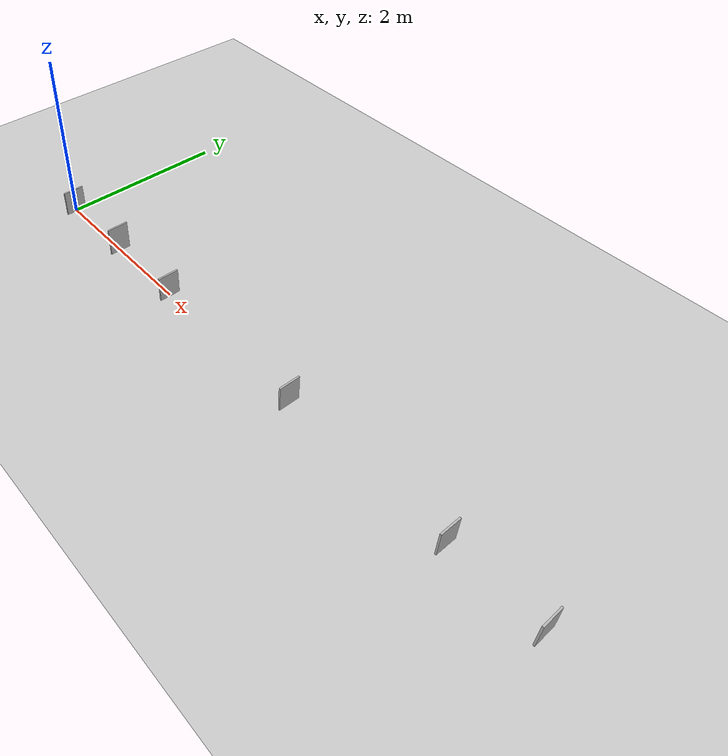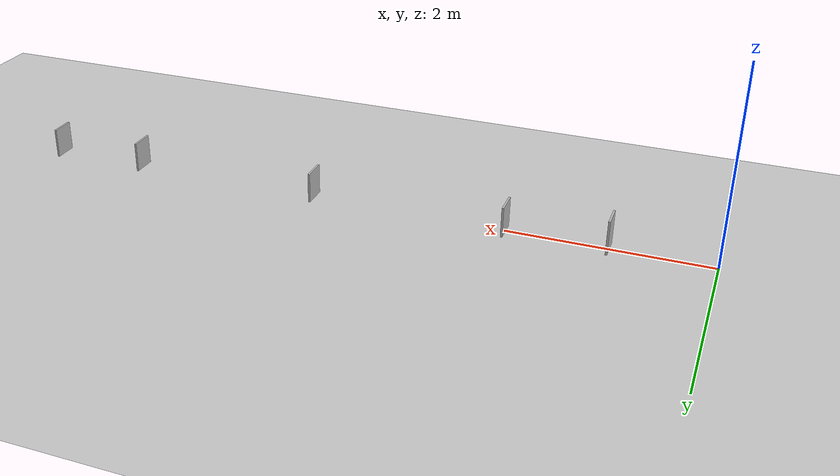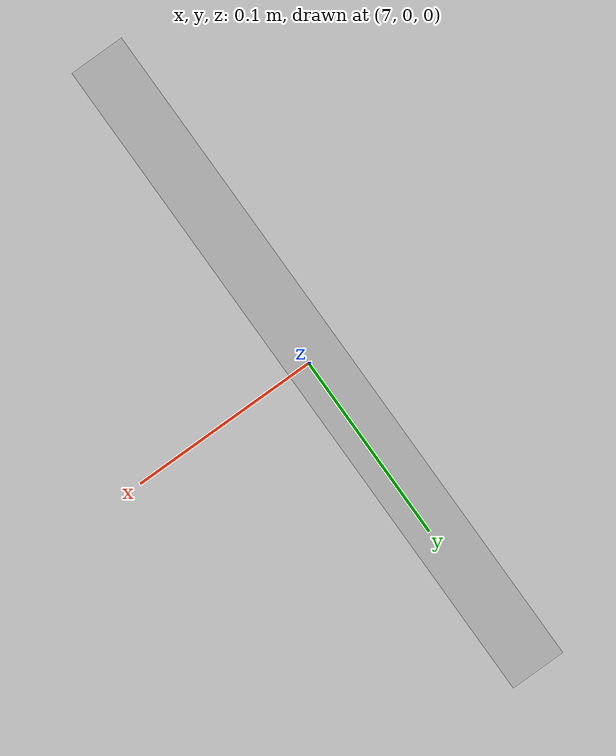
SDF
<sdf version="1.7">
 <world name="default">
  <light name="sun" type="directional">
   <pose>0 0 10 0 -0 0</pose>
   <diffuse>0.8 0.8 0.8 1</diffuse>
   <specular>0.2 0.2 0.2 1</specular>
   <attenuation>
    <range>1000</range>
    <constant>0.9</constant>
    <linear>0.01</linear>
    <quadratic>0.001</quadratic>
   </attenuation>
   <direction>-0.5 0.1 -0.9</direction>
   <spot><inner_angle>0</inner_angle><outer_angle>0</outer_angle><falloff>0</falloff></spot>
  </light>
  <model name="ground_plane">
   <static>1</static>
   <link name="link">
    <collision name="collision">
     <geometry><plane><normal>0 0 1</normal><size>100 100</size></plane></geometry>
     <surface>
      <contact><collide_bitmask>65535</collide_bitmask></contact>
      <friction><ode><mu>100</mu><mu2>50</mu2></ode></friction>
     </surface>
    </collision>
    <visual name="visual">
     <cast_shadows>0</cast_shadows>
     <geometry><plane><normal>0 0 1</normal><size>100 100</size></plane></geometry>
     <material>
      <script><uri>file://media/materials/scripts/gazebo.material</uri><name>Gazebo/Grey</name></script>
     </material>
    </visual>
   </link>
  </model>
  <gravity>0 0 -9.8</gravity>
  <magnetic_field>6e-06 2.3e-05 -4.2e-05</magnetic_field>
  <atmosphere type="adiabatic"/>
  <physics type="ode">
   <max_step_size>0.001</max_step_size>
   <real_time_factor>1</real_time_factor>
   <real_time_update_rate>1000</real_time_update_rate>
  </physics>
  <scene><ambient>0.4 0.4 0.4 1</ambient><background>0.7 0.7 0.7 1</background><shadows>1</shadows></scene>
  <spherical_coordinates>
   <surface_model>EARTH_WGS84</surface_model>
   <latitude_deg>0</latitude_deg>
   <longitude_deg>0</longitude_deg>
   <elevation>0</elevation>
   <heading_deg>0</heading_deg>
  </spherical_coordinates>
  <model name="green">
   <static>1</static>
   <link name="link">
    <visual name="visual">
     <geometry><mesh><uri>model://green/meshes/acircles_pattern.dae</uri></mesh></geometry>
    </visual>
   </link>
   <pose>0 0 -0.37 0 0 -3.14</pose>
  </model>
  <model name="yellow">
   <static>1</static>
   <link name="link">
    <visual name="visual">
     <geometry><mesh><uri>model://yellow/meshes/acircles_pattern.dae</uri></mesh></geometry>
    </visual>
   </link>
   <pose>1 0 -0.32 0 0 -3.14</pose>
  </model>
  <model name="red">
   <static>1</static>
   <link name="link">
    <visual name="visual">
     <geometry><mesh><uri>model://red/meshes/acircles_pattern.dae</uri></mesh></geometry>
    </visual>
   </link>
   <pose>2 0 -0.37 0 0 -3.14</pose>
  </model>
  <model name="cross">
   <static>1</static>
   <link name="link">
    <visual name="visual">
     <geometry><mesh><uri>model://cross/meshes/acircles_pattern.dae</uri></mesh></geometry>
    </visual>
   </link>
   <pose>4 0 -0.37 0 0 -3.14</pose>
  </model>
  <model name="acircles_pattern">
   <static>1</static>
   <link name="link">
    <visual name="visual">
     <geometry><mesh><uri>model://acircles_pattern/meshes/acircles_pattern.dae</uri></mesh></geometry>
    </visual>
   </link>
   <pose>6 0 -0.37 0 0 -3.14</pose>
  </model>
  <model name="stop">
   <static>1</static>
   <link name="link">
    <visual name="visual">
     <geometry><mesh><uri>model://stop/meshes/acircles_pattern.dae</uri></mesh></geometry>
    </visual>
   </link>
   <pose>7 0 -0.37 0 0 -3.14</pose>
  </model>
 </world>
</sdf>
